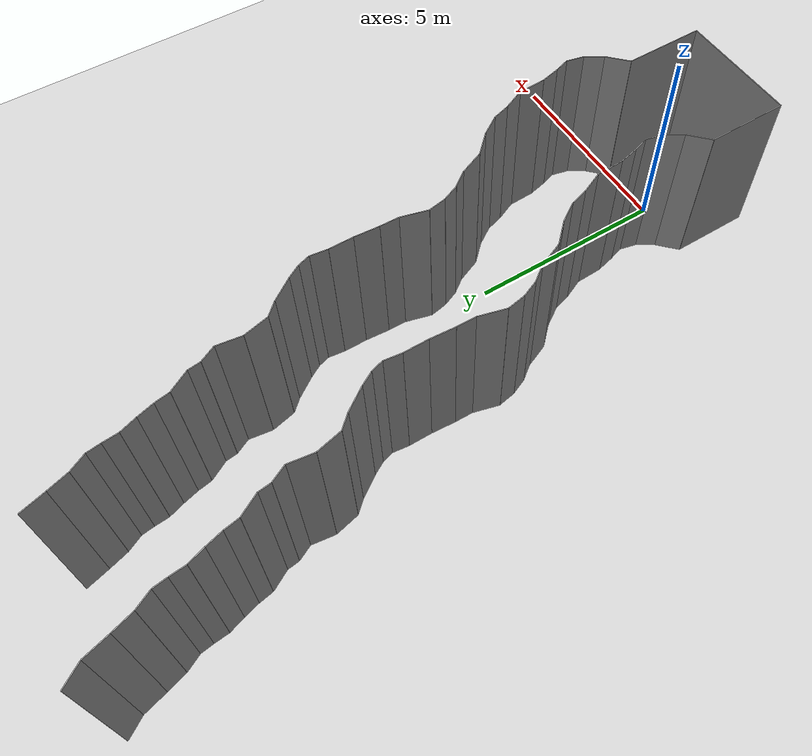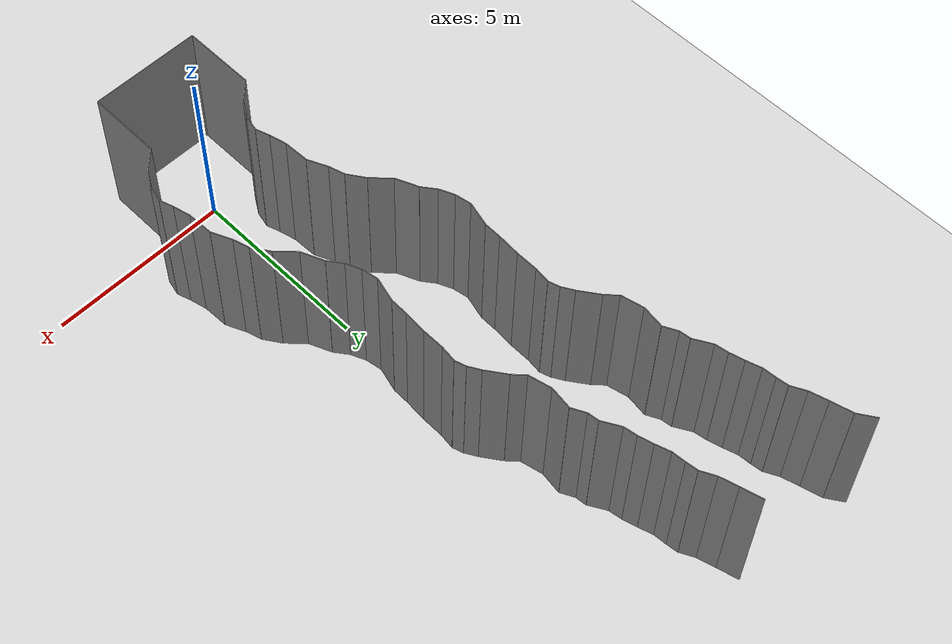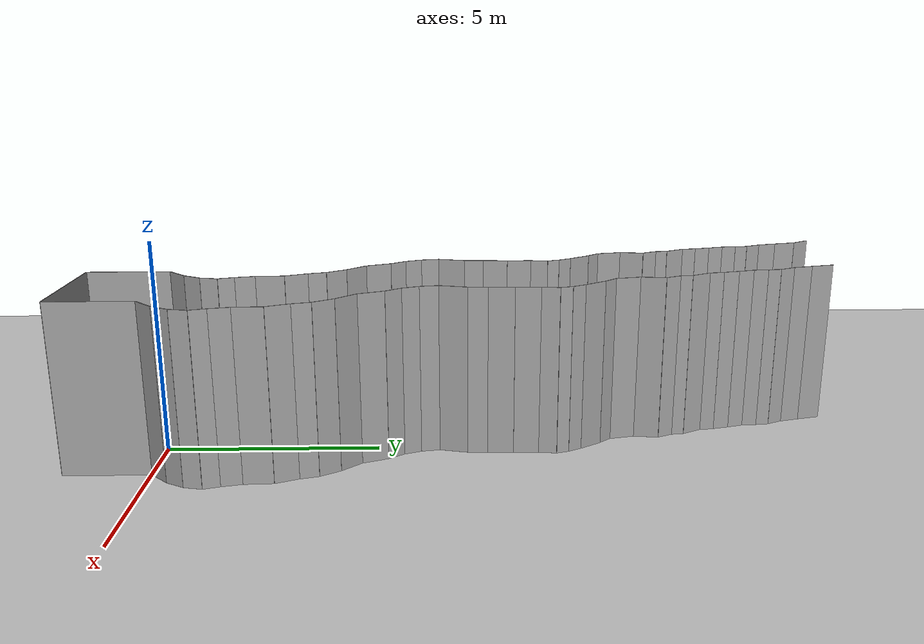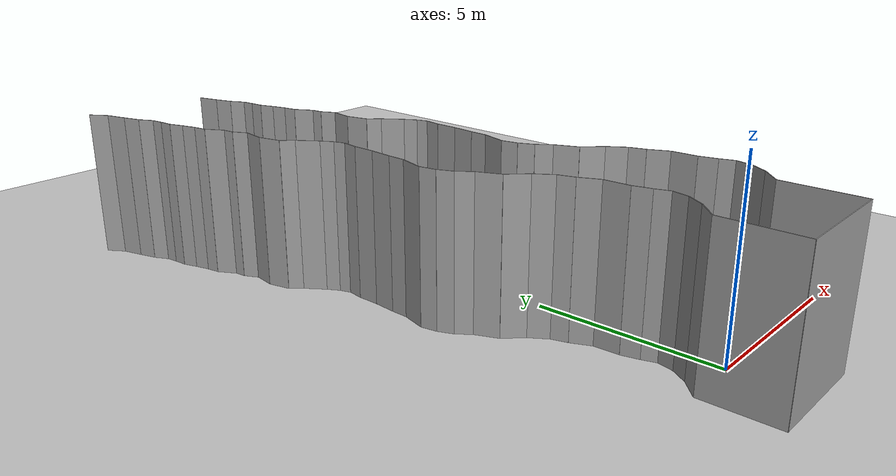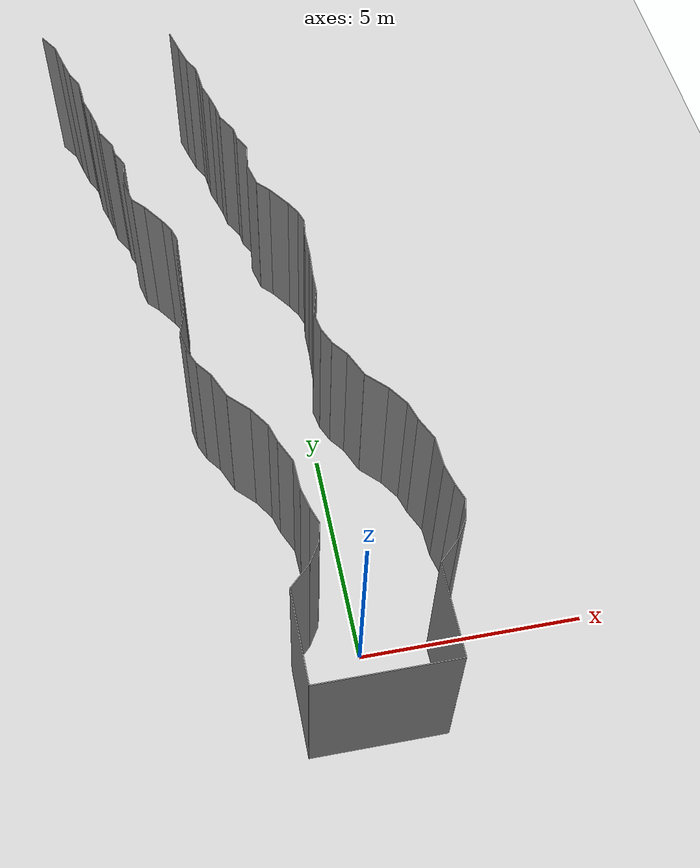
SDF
<sdf version="1.6">
 <world name="default">
  <model name="ground_plane">
   <static>1</static>
   <link name="link">
    <collision name="collision">
     <geometry><plane><normal>0 0 1</normal><size>200 200</size></plane></geometry>
     <surface><friction><ode><mu>100</mu><mu2>50</mu2></ode></friction></surface>
    </collision>
    <visual name="visual">
     <cast_shadows>0</cast_shadows>
     <geometry><plane><normal>0 0 1</normal><size>200 200</size></plane></geometry>
     <material>
      <script><uri>file://media/materials/scripts/gazebo.material</uri><name>Gazebo/Grey</name></script>
     </material>
    </visual>
   </link>
   <pose>0 100 0 0 -0 0</pose>
  </model>
  <model name="wall_back">
   <static>1</static>
   <pose>0.0 -2 2 0.0 0 0.0</pose>
   <link name="link">
    <collision name="collision"><geometry><box><size>3 0.02 4</size></box></geometry></collision>
    <visual name="visual">
     <material>
      <script><name>Gazebo/Grey</name><uri>file://media/materials/scripts/gazebo.material</uri></script>
     </material>
     <geometry><box><size>3 0.02 4</size></box></geometry>
    </visual>
   </link>
  </model>
  <model name="wall_left">
   <static>1</static>
   <pose>1.5 -1 2 0 0 0.00</pose>
   <link name="link">
    <collision name="collision"><geometry><box><size>0.02 2 4</size></box></geometry></collision>
    <visual name="visual">
     <material>
      <script><name>Gazebo/Grey</name><uri>file://media/materials/scripts/gazebo.material</uri></script>
     </material>
     <geometry><box><size>0.02 2 4</size></box></geometry>
    </visual>
   </link>
  </model>
  <model name="wall_right">
   <static>1</static>
   <pose>-1.5 -1 2 0 0 0.00</pose>
   <link name="link">
    <collision name="collision"><geometry><box><size>0.02 2 4</size></box></geometry></collision>
    <visual name="visual">
     <material>
      <script><name>Gazebo/Grey</name><uri>file://media/materials/scripts/gazebo.material</uri></script>
     </material>
     <geometry><box><size>0.02 2 4</size></box></geometry>
    </visual>
   </link>
  </model>
  <model name="wall_0">
   <static>1</static>
   <pose>-1.268546775388856 0.21946874336956915 2 0 0 -0.8119696357127165</pose>
   <link name="link">
    <collision name="collision"><geometry><box><size>0.02 0.637925150779 4</size></box></geometry></collision>
    <visual name="visual">
     <material>
      <script><name>Gazebo/Grey</name><uri>file://media/materials/scripts/gazebo.material</uri></script>
     </material>
     <geometry><box><size>0.02 0.637925150779 4</size></box></geometry>
    </visual>
   </link>
  </model>
  <model name="wall_1">
   <static>1</static>
   <pose>1.731453224611144 0.21946874336956915 2 0 0 -0.8119696357127165</pose>
   <link name="link">
    <collision name="collision"><geometry><box><size>0.02 0.637925150779 4</size></box></geometry></collision>
    <visual name="visual">
     <material>
      <script><name>Gazebo/Grey</name><uri>file://media/materials/scripts/gazebo.material</uri></script>
     </material>
     <geometry><box><size>0.02 0.637925150779 4</size></box></geometry>
    </visual>
   </link>
  </model>
  <model name="wall_2">
   <static>1</static>
   <pose>-0.9040545273559997 0.6517059571103775 2 0 0 -0.5587977806842974</pose>
   <link name="link">
    <collision name="collision"><geometry><box><size>0.02 0.50187569671 4</size></box></geometry></collision>
    <visual name="visual">
     <material>
      <script><name>Gazebo/Grey</name><uri>file://media/materials/scripts/gazebo.material</uri></script>
     </material>
     <geometry><box><size>0.02 0.50187569671 4</size></box></geometry>
    </visual>
   </link>
  </model>
  <model name="wall_3">
   <static>1</static>
   <pose>2.0959454726440003 0.6517059571103775 2 0 0 -0.5587977806842974</pose>
   <link name="link">
    <collision name="collision"><geometry><box><size>0.02 0.50187569671 4</size></box></geometry></collision>
    <visual name="visual">
     <material>
      <script><name>Gazebo/Grey</name><uri>file://media/materials/scripts/gazebo.material</uri></script>
     </material>
     <geometry><box><size>0.02 0.50187569671 4</size></box></geometry>
    </visual>
   </link>
  </model>
  <model name="wall_4">
   <static>1</static>
   <pose>-0.7215741765350594 1.0799409530266342 2 0 0 -0.22555712687251003</pose>
   <link name="link">
    <collision name="collision"><geometry><box><size>0.02 0.442132416751 4</size></box></geometry></collision>
    <visual name="visual">
     <material>
      <script><name>Gazebo/Grey</name><uri>file://media/materials/scripts/gazebo.material</uri></script>
     </material>
     <geometry><box><size>0.02 0.442132416751 4</size></box></geometry>
    </visual>
   </link>
  </model>
  <model name="wall_5">
   <static>1</static>
   <pose>2.2784258234649406 1.0799409530266342 2 0 0 -0.22555712687251003</pose>
   <link name="link">
    <collision name="collision"><geometry><box><size>0.02 0.442132416751 4</size></box></geometry></collision>
    <visual name="visual">
     <material>
      <script><name>Gazebo/Grey</name><uri>file://media/materials/scripts/gazebo.material</uri></script>
     </material>
     <geometry><box><size>0.02 0.442132416751 4</size></box></geometry>
    </visual>
   </link>
  </model>
  <model name="wall_6">
   <static>1</static>
   <pose>-0.7332599195898859 1.4806173207940363 2 0 0 0.318785648126557</pose>
   <link name="link">
    <collision name="collision"><geometry><box><size>0.02 0.390072836267 4</size></box></geometry></collision>
    <visual name="visual">
     <material>
      <script><name>Gazebo/Grey</name><uri>file://media/materials/scripts/gazebo.material</uri></script>
     </material>
     <geometry><box><size>0.02 0.390072836267 4</size></box></geometry>
    </visual>
   </link>
  </model>
  <model name="wall_7">
   <static>1</static>
   <pose>2.266740080410114 1.4806173207940363 2 0 0 0.318785648126557</pose>
   <link name="link">
    <collision name="collision"><geometry><box><size>0.02 0.390072836267 4</size></box></geometry></collision>
    <visual name="visual">
     <material>
      <script><name>Gazebo/Grey</name><uri>file://media/materials/scripts/gazebo.material</uri></script>
     </material>
     <geometry><box><size>0.02 0.390072836267 4</size></box></geometry>
    </visual>
   </link>
  </model>
  <model name="wall_8">
   <static>1</static>
   <pose>-0.8505706344513954 1.8990331960274434 2 0 0 0.2364132621165179</pose>
   <link name="link">
    <collision name="collision"><geometry><box><size>0.02 0.47975683729 4</size></box></geometry></collision>
    <visual name="visual">
     <material>
      <script><name>Gazebo/Grey</name><uri>file://media/materials/scripts/gazebo.material</uri></script>
     </material>
     <geometry><box><size>0.02 0.47975683729 4</size></box></geometry>
    </visual>
   </link>
  </model>
  <model name="wall_9">
   <static>1</static>
   <pose>2.1494293655486048 1.8990331960274434 2 0 0 0.2364132621165179</pose>
   <link name="link">
    <collision name="collision"><geometry><box><size>0.02 0.47975683729 4</size></box></geometry></collision>
    <visual name="visual">
     <material>
      <script><name>Gazebo/Grey</name><uri>file://media/materials/scripts/gazebo.material</uri></script>
     </material>
     <geometry><box><size>0.02 0.47975683729 4</size></box></geometry>
    </visual>
   </link>
  </model>
  <model name="wall_10">
   <static>1</static>
   <pose>-0.9196730757531828 2.473693347514386 2 0 0 0.03781661205570284</pose>
   <link name="link">
    <collision name="collision"><geometry><box><size>0.02 0.683396840313 4</size></box></geometry></collision>
    <visual name="visual">
     <material>
      <script><name>Gazebo/Grey</name><uri>file://media/materials/scripts/gazebo.material</uri></script>
     </material>
     <geometry><box><size>0.02 0.683396840313 4</size></box></geometry>
    </visual>
   </link>
  </model>
  <model name="wall_11">
   <static>1</static>
   <pose>2.080326924246817 2.473693347514386 2 0 0 0.03781661205570284</pose>
   <link name="link">
    <collision name="collision"><geometry><box><size>0.02 0.683396840313 4</size></box></geometry></collision>
    <visual name="visual">
     <material>
      <script><name>Gazebo/Grey</name><uri>file://media/materials/scripts/gazebo.material</uri></script>
     </material>
     <geometry><box><size>0.02 0.683396840313 4</size></box></geometry>
    </visual>
   </link>
  </model>
  <model name="wall_12">
   <static>1</static>
   <pose>-1.0510843043802374 3.0766273766579872 2 0 0 0.42547929488258074</pose>
   <link name="link">
    <collision name="collision"><geometry><box><size>0.02 0.574150503129 4</size></box></geometry></collision>
    <visual name="visual">
     <material>
      <script><name>Gazebo/Grey</name><uri>file://media/materials/scripts/gazebo.material</uri></script>
     </material>
     <geometry><box><size>0.02 0.574150503129 4</size></box></geometry>
    </visual>
   </link>
  </model>
  <model name="wall_13">
   <static>1</static>
   <pose>1.9489156956197626 3.0766273766579872 2 0 0 0.42547929488258074</pose>
   <link name="link">
    <collision name="collision"><geometry><box><size>0.02 0.574150503129 4</size></box></geometry></collision>
    <visual name="visual">
     <material>
      <script><name>Gazebo/Grey</name><uri>file://media/materials/scripts/gazebo.material</uri></script>
     </material>
     <geometry><box><size>0.02 0.574150503129 4</size></box></geometry>
    </visual>
   </link>
  </model>
  <model name="wall_14">
   <static>1</static>
   <pose>-1.2323841443039332 3.551140632230809 2 0 0 0.2867017140573027</pose>
   <link name="link">
    <collision name="collision"><geometry><box><size>0.02 0.444198048466 4</size></box></geometry></collision>
    <visual name="visual">
     <material>
      <script><name>Gazebo/Grey</name><uri>file://media/materials/scripts/gazebo.material</uri></script>
     </material>
     <geometry><box><size>0.02 0.444198048466 4</size></box></geometry>
    </visual>
   </link>
  </model>
  <model name="wall_15">
   <static>1</static>
   <pose>1.7676158556960668 3.551140632230809 2 0 0 0.2867017140573027</pose>
   <link name="link">
    <collision name="collision"><geometry><box><size>0.02 0.444198048466 4</size></box></geometry></collision>
    <visual name="visual">
     <material>
      <script><name>Gazebo/Grey</name><uri>file://media/materials/scripts/gazebo.material</uri></script>
     </material>
     <geometry><box><size>0.02 0.444198048466 4</size></box></geometry>
    </visual>
   </link>
  </model>
  <model name="wall_16">
   <static>1</static>
   <pose>-1.446954385748814 3.9921352371495864 2 0 0 0.5873604989164706</pose>
   <link name="link">
    <collision name="collision"><geometry><box><size>0.02 0.547716326666 4</size></box></geometry></collision>
    <visual name="visual">
     <material>
      <script><name>Gazebo/Grey</name><uri>file://media/materials/scripts/gazebo.material</uri></script>
     </material>
     <geometry><box><size>0.02 0.547716326666 4</size></box></geometry>
    </visual>
   </link>
  </model>
  <model name="wall_17">
   <static>1</static>
   <pose>1.553045614251186 3.9921352371495864 2 0 0 0.5873604989164706</pose>
   <link name="link">
    <collision name="collision"><geometry><box><size>0.02 0.547716326666 4</size></box></geometry></collision>
    <visual name="visual">
     <material>
      <script><name>Gazebo/Grey</name><uri>file://media/materials/scripts/gazebo.material</uri></script>
     </material>
     <geometry><box><size>0.02 0.547716326666 4</size></box></geometry>
    </visual>
   </link>
  </model>
  <model name="wall_18">
   <static>1</static>
   <pose>-1.81945374808341 4.443876371837759 2 0 0 0.7785518512731552</pose>
   <link name="link">
    <collision name="collision"><geometry><box><size>0.02 0.628655860006 4</size></box></geometry></collision>
    <visual name="visual">
     <material>
      <script><name>Gazebo/Grey</name><uri>file://media/materials/scripts/gazebo.material</uri></script>
     </material>
     <geometry><box><size>0.02 0.628655860006 4</size></box></geometry>
    </visual>
   </link>
  </model>
  <model name="wall_19">
   <static>1</static>
   <pose>1.18054625191659 4.443876371837759 2 0 0 0.7785518512731552</pose>
   <link name="link">
    <collision name="collision"><geometry><box><size>0.02 0.628655860006 4</size></box></geometry></collision>
    <visual name="visual">
     <material>
      <script><name>Gazebo/Grey</name><uri>file://media/materials/scripts/gazebo.material</uri></script>
     </material>
     <geometry><box><size>0.02 0.628655860006 4</size></box></geometry>
    </visual>
   </link>
  </model>
  <model name="wall_20">
   <static>1</static>
   <pose>-2.166937635361994 4.964693277102102 2 0 0 0.40331440098982274</pose>
   <link name="link">
    <collision name="collision"><geometry><box><size>0.02 0.645897485215 4</size></box></geometry></collision>
    <visual name="visual">
     <material>
      <script><name>Gazebo/Grey</name><uri>file://media/materials/scripts/gazebo.material</uri></script>
     </material>
     <geometry><box><size>0.02 0.645897485215 4</size></box></geometry>
    </visual>
   </link>
  </model>
  <model name="wall_21">
   <static>1</static>
   <pose>0.833062364638006 4.964693277102102 2 0 0 0.40331440098982274</pose>
   <link name="link">
    <collision name="collision"><geometry><box><size>0.02 0.645897485215 4</size></box></geometry></collision>
    <visual name="visual">
     <material>
      <script><name>Gazebo/Grey</name><uri>file://media/materials/scripts/gazebo.material</uri></script>
     </material>
     <geometry><box><size>0.02 0.645897485215 4</size></box></geometry>
    </visual>
   </link>
  </model>
  <model name="wall_22">
   <static>1</static>
   <pose>-2.4293353268070423 5.4427106422066975 2 0 0 0.6432007472633602</pose>
   <link name="link">
    <collision name="collision"><geometry><box><size>0.02 0.452348955525 4</size></box></geometry></collision>
    <visual name="visual">
     <material>
      <script><name>Gazebo/Grey</name><uri>file://media/materials/scripts/gazebo.material</uri></script>
     </material>
     <geometry><box><size>0.02 0.452348955525 4</size></box></geometry>
    </visual>
   </link>
  </model>
  <model name="wall_23">
   <static>1</static>
   <pose>0.5706646731929577 5.4427106422066975 2 0 0 0.6432007472633602</pose>
   <link name="link">
    <collision name="collision"><geometry><box><size>0.02 0.452348955525 4</size></box></geometry></collision>
    <visual name="visual">
     <material>
      <script><name>Gazebo/Grey</name><uri>file://media/materials/scripts/gazebo.material</uri></script>
     </material>
     <geometry><box><size>0.02 0.452348955525 4</size></box></geometry>
    </visual>
   </link>
  </model>
  <model name="wall_24">
   <static>1</static>
   <pose>-2.649575518176277 5.820467784564643 2 0 0 0.4059943945643651</pose>
   <link name="link">
    <collision name="collision"><geometry><box><size>0.02 0.428376265459 4</size></box></geometry></collision>
    <visual name="visual">
     <material>
      <script><name>Gazebo/Grey</name><uri>file://media/materials/scripts/gazebo.material</uri></script>
     </material>
     <geometry><box><size>0.02 0.428376265459 4</size></box></geometry>
    </visual>
   </link>
  </model>
  <model name="wall_25">
   <static>1</static>
   <pose>0.350424481823723 5.820467784564643 2 0 0 0.4059943945643651</pose>
   <link name="link">
    <collision name="collision"><geometry><box><size>0.02 0.428376265459 4</size></box></geometry></collision>
    <visual name="visual">
     <material>
      <script><name>Gazebo/Grey</name><uri>file://media/materials/scripts/gazebo.material</uri></script>
     </material>
     <geometry><box><size>0.02 0.428376265459 4</size></box></geometry>
    </visual>
   </link>
  </model>
  <model name="wall_26">
   <static>1</static>
   <pose>-2.7732187405365583 6.237583993818234 2 0 0 0.1754200736375513</pose>
   <link name="link">
    <collision name="collision"><geometry><box><size>0.02 0.447547168787 4</size></box></geometry></collision>
    <visual name="visual">
     <material>
      <script><name>Gazebo/Grey</name><uri>file://media/materials/scripts/gazebo.material</uri></script>
     </material>
     <geometry><box><size>0.02 0.447547168787 4</size></box></geometry>
    </visual>
   </link>
  </model>
  <model name="wall_27">
   <static>1</static>
   <pose>0.22678125946344174 6.237583993818234 2 0 0 0.1754200736375513</pose>
   <link name="link">
    <collision name="collision"><geometry><box><size>0.02 0.447547168787 4</size></box></geometry></collision>
    <visual name="visual">
     <material>
      <script><name>Gazebo/Grey</name><uri>file://media/materials/scripts/gazebo.material</uri></script>
     </material>
     <geometry><box><size>0.02 0.447547168787 4</size></box></geometry>
    </visual>
   </link>
  </model>
  <model name="wall_28">
   <static>1</static>
   <pose>-2.7248131909323514 6.7846727944053855 2 0 0 -0.26153288845329814</pose>
   <link name="link">
    <collision name="collision"><geometry><box><size>0.02 0.676503455935 4</size></box></geometry></collision>
    <visual name="visual">
     <material>
      <script><name>Gazebo/Grey</name><uri>file://media/materials/scripts/gazebo.material</uri></script>
     </material>
     <geometry><box><size>0.02 0.676503455935 4</size></box></geometry>
    </visual>
   </link>
  </model>
  <model name="wall_29">
   <static>1</static>
   <pose>0.2751868090676486 6.7846727944053855 2 0 0 -0.26153288845329814</pose>
   <link name="link">
    <collision name="collision"><geometry><box><size>0.02 0.676503455935 4</size></box></geometry></collision>
    <visual name="visual">
     <material>
      <script><name>Gazebo/Grey</name><uri>file://media/materials/scripts/gazebo.material</uri></script>
     </material>
     <geometry><box><size>0.02 0.676503455935 4</size></box></geometry>
    </visual>
   </link>
  </model>
  <model name="wall_30">
   <static>1</static>
   <pose>-2.6326140372152835 7.345889244844755 2 0 0 -0.02021432939373362</pose>
   <link name="link">
    <collision name="collision"><geometry><box><size>0.02 0.469029926559 4</size></box></geometry></collision>
    <visual name="visual">
     <material>
      <script><name>Gazebo/Grey</name><uri>file://media/materials/scripts/gazebo.material</uri></script>
     </material>
     <geometry><box><size>0.02 0.469029926559 4</size></box></geometry>
    </visual>
   </link>
  </model>
  <model name="wall_31">
   <static>1</static>
   <pose>0.36738596278471647 7.345889244844755 2 0 0 -0.02021432939373362</pose>
   <link name="link">
    <collision name="collision"><geometry><box><size>0.02 0.469029926559 4</size></box></geometry></collision>
    <visual name="visual">
     <material>
      <script><name>Gazebo/Grey</name><uri>file://media/materials/scripts/gazebo.material</uri></script>
     </material>
     <geometry><box><size>0.02 0.469029926559 4</size></box></geometry>
    </visual>
   </link>
  </model>
  <model name="wall_32">
   <static>1</static>
   <pose>-2.605728959813212 7.885590306142588 2 0 0 -0.07242347026716565</pose>
   <link name="link">
    <collision name="collision"><geometry><box><size>0.02 0.612072527439 4</size></box></geometry></collision>
    <visual name="visual">
     <material>
      <script><name>Gazebo/Grey</name><uri>file://media/materials/scripts/gazebo.material</uri></script>
     </material>
     <geometry><box><size>0.02 0.612072527439 4</size></box></geometry>
    </visual>
   </link>
  </model>
  <model name="wall_33">
   <static>1</static>
   <pose>0.39427104018678794 7.885590306142588 2 0 0 -0.07242347026716565</pose>
   <link name="link">
    <collision name="collision"><geometry><box><size>0.02 0.612072527439 4</size></box></geometry></collision>
    <visual name="visual">
     <material>
      <script><name>Gazebo/Grey</name><uri>file://media/materials/scripts/gazebo.material</uri></script>
     </material>
     <geometry><box><size>0.02 0.612072527439 4</size></box></geometry>
    </visual>
   </link>
  </model>
  <model name="wall_34">
   <static>1</static>
   <pose>-2.5823764355351 8.487993178296218 2 0 0 -0.004063952372006906</pose>
   <link name="link">
    <collision name="collision"><geometry><box><size>0.02 0.594342632225 4</size></box></geometry></collision>
    <visual name="visual">
     <material>
      <script><name>Gazebo/Grey</name><uri>file://media/materials/scripts/gazebo.material</uri></script>
     </material>
     <geometry><box><size>0.02 0.594342632225 4</size></box></geometry>
    </visual>
   </link>
  </model>
  <model name="wall_35">
   <static>1</static>
   <pose>0.4176235644649 8.487993178296218 2 0 0 -0.004063952372006906</pose>
   <link name="link">
    <collision name="collision"><geometry><box><size>0.02 0.594342632225 4</size></box></geometry></collision>
    <visual name="visual">
     <material>
      <script><name>Gazebo/Grey</name><uri>file://media/materials/scripts/gazebo.material</uri></script>
     </material>
     <geometry><box><size>0.02 0.594342632225 4</size></box></geometry>
    </visual>
   </link>
  </model>
  <model name="wall_36">
   <static>1</static>
   <pose>-2.554407671798095 8.997587530809655 2 0 0 -0.12531847427243922</pose>
   <link name="link">
    <collision name="collision"><geometry><box><size>0.02 0.428209034052 4</size></box></geometry></collision>
    <visual name="visual">
     <material>
      <script><name>Gazebo/Grey</name><uri>file://media/materials/scripts/gazebo.material</uri></script>
     </material>
     <geometry><box><size>0.02 0.428209034052 4</size></box></geometry>
    </visual>
   </link>
  </model>
  <model name="wall_37">
   <static>1</static>
   <pose>0.4455923282019052 8.997587530809655 2 0 0 -0.12531847427243922</pose>
   <link name="link">
    <collision name="collision"><geometry><box><size>0.02 0.428209034052 4</size></box></geometry></collision>
    <visual name="visual">
     <material>
      <script><name>Gazebo/Grey</name><uri>file://media/materials/scripts/gazebo.material</uri></script>
     </material>
     <geometry><box><size>0.02 0.428209034052 4</size></box></geometry>
    </visual>
   </link>
  </model>
  <model name="wall_38">
   <static>1</static>
   <pose>-2.573418172815218 9.356826306531701 2 0 0 0.30221719389149426</pose>
   <link name="link">
    <collision name="collision"><geometry><box><size>0.02 0.307565785493 4</size></box></geometry></collision>
    <visual name="visual">
     <material>
      <script><name>Gazebo/Grey</name><uri>file://media/materials/scripts/gazebo.material</uri></script>
     </material>
     <geometry><box><size>0.02 0.307565785493 4</size></box></geometry>
    </visual>
   </link>
  </model>
  <model name="wall_39">
   <static>1</static>
   <pose>0.4265818271847821 9.356826306531701 2 0 0 0.30221719389149426</pose>
   <link name="link">
    <collision name="collision"><geometry><box><size>0.02 0.307565785493 4</size></box></geometry></collision>
    <visual name="visual">
     <material>
      <script><name>Gazebo/Grey</name><uri>file://media/materials/scripts/gazebo.material</uri></script>
     </material>
     <geometry><box><size>0.02 0.307565785493 4</size></box></geometry>
    </visual>
   </link>
  </model>
  <model name="wall_40">
   <static>1</static>
   <pose>-2.7092129441926875 9.659572125686658 2 0 0 0.5235771457483689</pose>
   <link name="link">
    <collision name="collision"><geometry><box><size>0.02 0.360106264601 4</size></box></geometry></collision>
    <visual name="visual">
     <material>
      <script><name>Gazebo/Grey</name><uri>file://media/materials/scripts/gazebo.material</uri></script>
     </material>
     <geometry><box><size>0.02 0.360106264601 4</size></box></geometry>
    </visual>
   </link>
  </model>
  <model name="wall_41">
   <static>1</static>
   <pose>0.29078705580731246 9.659572125686658 2 0 0 0.5235771457483689</pose>
   <link name="link">
    <collision name="collision"><geometry><box><size>0.02 0.360106264601 4</size></box></geometry></collision>
    <visual name="visual">
     <material>
      <script><name>Gazebo/Grey</name><uri>file://media/materials/scripts/gazebo.material</uri></script>
     </material>
     <geometry><box><size>0.02 0.360106264601 4</size></box></geometry>
    </visual>
   </link>
  </model>
  <model name="wall_42">
   <static>1</static>
   <pose>-2.97848362910238 10.070076589667385 2 0 0 0.6134812625743524</pose>
   <link name="link">
    <collision name="collision"><geometry><box><size>0.02 0.62269263957 4</size></box></geometry></collision>
    <visual name="visual">
     <material>
      <script><name>Gazebo/Grey</name><uri>file://media/materials/scripts/gazebo.material</uri></script>
     </material>
     <geometry><box><size>0.02 0.62269263957 4</size></box></geometry>
    </visual>
   </link>
  </model>
  <model name="wall_43">
   <static>1</static>
   <pose>0.02151637089761982 10.070076589667385 2 0 0 0.6134812625743524</pose>
   <link name="link">
    <collision name="collision"><geometry><box><size>0.02 0.62269263957 4</size></box></geometry></collision>
    <visual name="visual">
     <material>
      <script><name>Gazebo/Grey</name><uri>file://media/materials/scripts/gazebo.material</uri></script>
     </material>
     <geometry><box><size>0.02 0.62269263957 4</size></box></geometry>
    </visual>
   </link>
  </model>
  <model name="wall_44">
   <static>1</static>
   <pose>-3.2922154291811276 10.467831383368289 2 0 0 0.7540811336149634</pose>
   <link name="link">
    <collision name="collision"><geometry><box><size>0.02 0.392873321355 4</size></box></geometry></collision>
    <visual name="visual">
     <material>
      <script><name>Gazebo/Grey</name><uri>file://media/materials/scripts/gazebo.material</uri></script>
     </material>
     <geometry><box><size>0.02 0.392873321355 4</size></box></geometry>
    </visual>
   </link>
  </model>
  <model name="wall_45">
   <static>1</static>
   <pose>-0.29221542918112764 10.467831383368289 2 0 0 0.7540811336149634</pose>
   <link name="link">
    <collision name="collision"><geometry><box><size>0.02 0.392873321355 4</size></box></geometry></collision>
    <visual name="visual">
     <material>
      <script><name>Gazebo/Grey</name><uri>file://media/materials/scripts/gazebo.material</uri></script>
     </material>
     <geometry><box><size>0.02 0.392873321355 4</size></box></geometry>
    </visual>
   </link>
  </model>
  <model name="wall_46">
   <static>1</static>
   <pose>-3.4960749040405514 10.913240104627954 2 0 0 0.22563850545443595</pose>
   <link name="link">
    <collision name="collision"><geometry><box><size>0.02 0.620172178579 4</size></box></geometry></collision>
    <visual name="visual">
     <material>
      <script><name>Gazebo/Grey</name><uri>file://media/materials/scripts/gazebo.material</uri></script>
     </material>
     <geometry><box><size>0.02 0.620172178579 4</size></box></geometry>
    </visual>
   </link>
  </model>
  <model name="wall_47">
   <static>1</static>
   <pose>-0.49607490404055143 10.913240104627954 2 0 0 0.22563850545443595</pose>
   <link name="link">
    <collision name="collision"><geometry><box><size>0.02 0.620172178579 4</size></box></geometry></collision>
    <visual name="visual">
     <material>
      <script><name>Gazebo/Grey</name><uri>file://media/materials/scripts/gazebo.material</uri></script>
     </material>
     <geometry><box><size>0.02 0.620172178579 4</size></box></geometry>
    </visual>
   </link>
  </model>
  <model name="wall_48">
   <static>1</static>
   <pose>-3.5227978954640142 11.513726871136802 2 0 0 -0.1420398936168532</pose>
   <link name="link">
    <collision name="collision"><geometry><box><size>0.02 0.602590334272 4</size></box></geometry></collision>
    <visual name="visual">
     <material>
      <script><name>Gazebo/Grey</name><uri>file://media/materials/scripts/gazebo.material</uri></script>
     </material>
     <geometry><box><size>0.02 0.602590334272 4</size></box></geometry>
    </visual>
   </link>
  </model>
  <model name="wall_49">
   <static>1</static>
   <pose>-0.5227978954640142 11.513726871136802 2 0 0 -0.1420398936168532</pose>
   <link name="link">
    <collision name="collision"><geometry><box><size>0.02 0.602590334272 4</size></box></geometry></collision>
    <visual name="visual">
     <material>
      <script><name>Gazebo/Grey</name><uri>file://media/materials/scripts/gazebo.material</uri></script>
     </material>
     <geometry><box><size>0.02 0.602590334272 4</size></box></geometry>
    </visual>
   </link>
  </model>
  <model name="wall_50">
   <static>1</static>
   <pose>-3.574038922288434 11.997799308946025 2 0 0 0.46788991533035973</pose>
   <link name="link">
    <collision name="collision"><geometry><box><size>0.02 0.416374147336 4</size></box></geometry></collision>
    <visual name="visual">
     <material>
      <script><name>Gazebo/Grey</name><uri>file://media/materials/scripts/gazebo.material</uri></script>
     </material>
     <geometry><box><size>0.02 0.416374147336 4</size></box></geometry>
    </visual>
   </link>
  </model>
  <model name="wall_51">
   <static>1</static>
   <pose>-0.5740389222884339 11.997799308946025 2 0 0 0.46788991533035973</pose>
   <link name="link">
    <collision name="collision"><geometry><box><size>0.02 0.416374147336 4</size></box></geometry></collision>
    <visual name="visual">
     <material>
      <script><name>Gazebo/Grey</name><uri>file://media/materials/scripts/gazebo.material</uri></script>
     </material>
     <geometry><box><size>0.02 0.416374147336 4</size></box></geometry>
    </visual>
   </link>
  </model>
  <model name="wall_52">
   <static>1</static>
   <pose>-3.684685031745664 12.33310087231097 2 0 0 0.11160140679598836</pose>
   <link name="link">
    <collision name="collision"><geometry><box><size>0.02 0.300851659717 4</size></box></geometry></collision>
    <visual name="visual">
     <material>
      <script><name>Gazebo/Grey</name><uri>file://media/materials/scripts/gazebo.material</uri></script>
     </material>
     <geometry><box><size>0.02 0.300851659717 4</size></box></geometry>
    </visual>
   </link>
  </model>
  <model name="wall_53">
   <static>1</static>
   <pose>-0.6846850317456639 12.33310087231097 2 0 0 0.11160140679598836</pose>
   <link name="link">
    <collision name="collision"><geometry><box><size>0.02 0.300851659717 4</size></box></geometry></collision>
    <visual name="visual">
     <material>
      <script><name>Gazebo/Grey</name><uri>file://media/materials/scripts/gazebo.material</uri></script>
     </material>
     <geometry><box><size>0.02 0.300851659717 4</size></box></geometry>
    </visual>
   </link>
  </model>
  <model name="wall_54">
   <static>1</static>
   <pose>-3.835509610672219 12.720199287340694 2 0 0 0.5137214898504788</pose>
   <link name="link">
    <collision name="collision"><geometry><box><size>0.02 0.545648075531 4</size></box></geometry></collision>
    <visual name="visual">
     <material>
      <script><name>Gazebo/Grey</name><uri>file://media/materials/scripts/gazebo.material</uri></script>
     </material>
     <geometry><box><size>0.02 0.545648075531 4</size></box></geometry>
    </visual>
   </link>
  </model>
  <model name="wall_55">
   <static>1</static>
   <pose>-0.8355096106722191 12.720199287340694 2 0 0 0.5137214898504788</pose>
   <link name="link">
    <collision name="collision"><geometry><box><size>0.02 0.545648075531 4</size></box></geometry></collision>
    <visual name="visual">
     <material>
      <script><name>Gazebo/Grey</name><uri>file://media/materials/scripts/gazebo.material</uri></script>
     </material>
     <geometry><box><size>0.02 0.545648075531 4</size></box></geometry>
    </visual>
   </link>
  </model>
  <model name="wall_56">
   <static>1</static>
   <pose>-3.998458795984539 13.135990927488207 2 0 0 0.16066940188695944</pose>
   <link name="link">
    <collision name="collision"><geometry><box><size>0.02 0.36101625879 4</size></box></geometry></collision>
    <visual name="visual">
     <material>
      <script><name>Gazebo/Grey</name><uri>file://media/materials/scripts/gazebo.material</uri></script>
     </material>
     <geometry><box><size>0.02 0.36101625879 4</size></box></geometry>
    </visual>
   </link>
  </model>
  <model name="wall_57">
   <static>1</static>
   <pose>-0.998458795984539 13.135990927488207 2 0 0 0.16066940188695944</pose>
   <link name="link">
    <collision name="collision"><geometry><box><size>0.02 0.36101625879 4</size></box></geometry></collision>
    <visual name="visual">
     <material>
      <script><name>Gazebo/Grey</name><uri>file://media/materials/scripts/gazebo.material</uri></script>
     </material>
     <geometry><box><size>0.02 0.36101625879 4</size></box></geometry>
    </visual>
   </link>
  </model>
  <model name="wall_58">
   <static>1</static>
   <pose>-4.080508287782165 13.51105411846598 2 0 0 0.26377998638756905</pose>
   <link name="link">
    <collision name="collision"><geometry><box><size>0.02 0.407867462001 4</size></box></geometry></collision>
    <visual name="visual">
     <material>
      <script><name>Gazebo/Grey</name><uri>file://media/materials/scripts/gazebo.material</uri></script>
     </material>
     <geometry><box><size>0.02 0.407867462001 4</size></box></geometry>
    </visual>
   </link>
  </model>
  <model name="wall_59">
   <static>1</static>
   <pose>-1.0805082877821652 13.51105411846598 2 0 0 0.26377998638756905</pose>
   <link name="link">
    <collision name="collision"><geometry><box><size>0.02 0.407867462001 4</size></box></geometry></collision>
    <visual name="visual">
     <material>
      <script><name>Gazebo/Grey</name><uri>file://media/materials/scripts/gazebo.material</uri></script>
     </material>
     <geometry><box><size>0.02 0.407867462001 4</size></box></geometry>
    </visual>
   </link>
  </model>
  <model name="wall_60">
   <static>1</static>
   <pose>-4.196516012435625 13.90495863176452 2 0 0 0.30872603140242194</pose>
   <link name="link">
    <collision name="collision"><geometry><box><size>0.02 0.413603756892 4</size></box></geometry></collision>
    <visual name="visual">
     <material>
      <script><name>Gazebo/Grey</name><uri>file://media/materials/scripts/gazebo.material</uri></script>
     </material>
     <geometry><box><size>0.02 0.413603756892 4</size></box></geometry>
    </visual>
   </link>
  </model>
  <model name="wall_61">
   <static>1</static>
   <pose>-1.1965160124356249 13.90495863176452 2 0 0 0.30872603140242194</pose>
   <link name="link">
    <collision name="collision"><geometry><box><size>0.02 0.413603756892 4</size></box></geometry></collision>
    <visual name="visual">
     <material>
      <script><name>Gazebo/Grey</name><uri>file://media/materials/scripts/gazebo.material</uri></script>
     </material>
     <geometry><box><size>0.02 0.413603756892 4</size></box></geometry>
    </visual>
   </link>
  </model>
  <model name="wall_62">
   <static>1</static>
   <pose>-4.273051628968552 14.285547763 2 0 0 0.07449433003170143</pose>
   <link name="link">
    <collision name="collision"><geometry><box><size>0.02 0.368150133713 4</size></box></geometry></collision>
    <visual name="visual">
     <material>
      <script><name>Gazebo/Grey</name><uri>file://media/materials/scripts/gazebo.material</uri></script>
     </material>
     <geometry><box><size>0.02 0.368150133713 4</size></box></geometry>
    </visual>
   </link>
  </model>
  <model name="wall_63">
   <static>1</static>
   <pose>-1.2730516289685516 14.285547763 2 0 0 0.07449433003170143</pose>
   <link name="link">
    <collision name="collision"><geometry><box><size>0.02 0.368150133713 4</size></box></geometry></collision>
    <visual name="visual">
     <material>
      <script><name>Gazebo/Grey</name><uri>file://media/materials/scripts/gazebo.material</uri></script>
     </material>
     <geometry><box><size>0.02 0.368150133713 4</size></box></geometry>
    </visual>
   </link>
  </model>
  <model name="wall_64">
   <static>1</static>
   <pose>-4.306963320157503 14.630731096822434 2 0 0 0.12441270922051477</pose>
   <link name="link">
    <collision name="collision"><geometry><box><size>0.02 0.325755424808 4</size></box></geometry></collision>
    <visual name="visual">
     <material>
      <script><name>Gazebo/Grey</name><uri>file://media/materials/scripts/gazebo.material</uri></script>
     </material>
     <geometry><box><size>0.02 0.325755424808 4</size></box></geometry>
    </visual>
   </link>
  </model>
  <model name="wall_65">
   <static>1</static>
   <pose>-1.3069633201575028 14.630731096822434 2 0 0 0.12441270922051477</pose>
   <link name="link">
    <collision name="collision"><geometry><box><size>0.02 0.325755424808 4</size></box></geometry></collision>
    <visual name="visual">
     <material>
      <script><name>Gazebo/Grey</name><uri>file://media/materials/scripts/gazebo.material</uri></script>
     </material>
     <geometry><box><size>0.02 0.325755424808 4</size></box></geometry>
    </visual>
   </link>
  </model>
  <model name="wall_66">
   <static>1</static>
   <pose>-4.425348202243941 14.984295278831334 2 0 0 0.47277627727432797</pose>
   <link name="link">
    <collision name="collision"><geometry><box><size>0.02 0.431188986267 4</size></box></geometry></collision>
    <visual name="visual">
     <material>
      <script><name>Gazebo/Grey</name><uri>file://media/materials/scripts/gazebo.material</uri></script>
     </material>
     <geometry><box><size>0.02 0.431188986267 4</size></box></geometry>
    </visual>
   </link>
  </model>
  <model name="wall_67">
   <static>1</static>
   <pose>-1.4253482022439412 14.984295278831334 2 0 0 0.47277627727432797</pose>
   <link name="link">
    <collision name="collision"><geometry><box><size>0.02 0.431188986267 4</size></box></geometry></collision>
    <visual name="visual">
     <material>
      <script><name>Gazebo/Grey</name><uri>file://media/materials/scripts/gazebo.material</uri></script>
     </material>
     <geometry><box><size>0.02 0.431188986267 4</size></box></geometry>
    </visual>
   </link>
  </model>
  <model name="wall_68">
   <static>1</static>
   <pose>-4.593763483631637 15.419056577256672 2 0 0 0.28159481010173315</pose>
   <link name="link">
    <collision name="collision"><geometry><box><size>0.02 0.505543395887 4</size></box></geometry></collision>
    <visual name="visual">
     <material>
      <script><name>Gazebo/Grey</name><uri>file://media/materials/scripts/gazebo.material</uri></script>
     </material>
     <geometry><box><size>0.02 0.505543395887 4</size></box></geometry>
    </visual>
   </link>
  </model>
  <model name="wall_69">
   <static>1</static>
   <pose>-1.593763483631637 15.419056577256672 2 0 0 0.28159481010173315</pose>
   <link name="link">
    <collision name="collision"><geometry><box><size>0.02 0.505543395887 4</size></box></geometry></collision>
    <visual name="visual">
     <material>
      <script><name>Gazebo/Grey</name><uri>file://media/materials/scripts/gazebo.material</uri></script>
     </material>
     <geometry><box><size>0.02 0.505543395887 4</size></box></geometry>
    </visual>
   </link>
  </model>
  <model name="wall_70">
   <static>1</static>
   <pose>-4.739704616200733 15.950339871127522 2 0 0 0.2566312104398875</pose>
   <link name="link">
    <collision name="collision"><geometry><box><size>0.02 0.596468815916 4</size></box></geometry></collision>
    <visual name="visual">
     <material>
      <script><name>Gazebo/Grey</name><uri>file://media/materials/scripts/gazebo.material</uri></script>
     </material>
     <geometry><box><size>0.02 0.596468815916 4</size></box></geometry>
    </visual>
   </link>
  </model>
  <model name="wall_71">
   <static>1</static>
   <pose>-1.7397046162007328 15.950339871127522 2 0 0 0.2566312104398875</pose>
   <link name="link">
    <collision name="collision"><geometry><box><size>0.02 0.596468815916 4</size></box></geometry></collision>
    <visual name="visual">
     <material>
      <script><name>Gazebo/Grey</name><uri>file://media/materials/scripts/gazebo.material</uri></script>
     </material>
     <geometry><box><size>0.02 0.596468815916 4</size></box></geometry>
    </visual>
   </link>
  </model>
  <model name="wall_72">
   <static>1</static>
   <pose>-4.963111926831633 16.465281734666583 2 0 0 0.5779256583100791</pose>
   <link name="link">
    <collision name="collision"><geometry><box><size>0.02 0.540771511479 4</size></box></geometry></collision>
    <visual name="visual">
     <material>
      <script><name>Gazebo/Grey</name><uri>file://media/materials/scripts/gazebo.material</uri></script>
     </material>
     <geometry><box><size>0.02 0.540771511479 4</size></box></geometry>
    </visual>
   </link>
  </model>
 </world>
</sdf>
